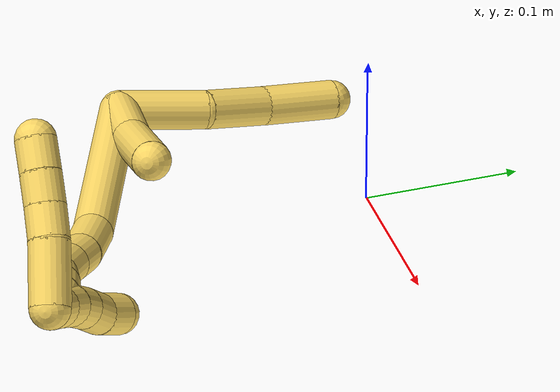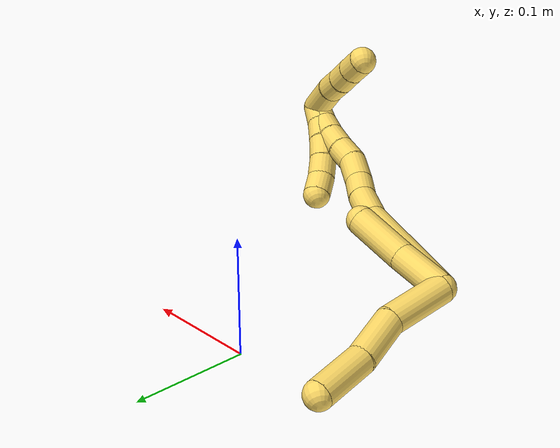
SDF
<sdf version="1.7">
 <world name="default">
  <model name="5">
   <static>0</static>
   <link name="5">
    <collision name="collision-cylinder-e_1_2_8">
     <pose>0.011069 0.02208 -0.013457 -2.11815 0.404474 -0.700104</pose>
     <geometry><cylinder><radius>0.0125</radius><length>0.056255</length></cylinder></geometry>
     <surface>
      <friction><ode><mu>1.16</mu><mu2>1.16</mu2><slip1>0</slip1><slip2>0</slip2></ode></friction>
      <contact><ode><kp>1e+06</kp><kd>1</kd><max_vel>0</max_vel><min_depth>0.001</min_depth></ode></contact>
     </surface>
    </collision>
    <visual name="visual-cylinder-e_1_2_8">
     <pose>0.011069 0.02208 -0.013457 -2.11815 0.404474 -0.700104</pose>
     <geometry><cylinder><radius>0.0125</radius><length>0.056255</length></cylinder></geometry>
     <material><ambient>1 0.858824 0.4 1</ambient></material>
    </visual>
    <collision name="collision-cylinder-e_2_8_9">
     <pose>0.028841 0.057886 -0.043318 -2.44482 0.303682 -0.797476</pose>
     <geometry><cylinder><radius>0.0125</radius><length>0.044828</length></cylinder></geometry>
     <surface>
      <friction><ode><mu>1.16</mu><mu2>1.16</mu2><slip1>0</slip1><slip2>0</slip2></ode></friction>
      <contact><ode><kp>1e+06</kp><kd>1</kd><max_vel>0</max_vel><min_depth>0.001</min_depth></ode></contact>
     </surface>
    </collision>
    <visual name="visual-cylinder-e_2_8_9">
     <pose>0.028841 0.057886 -0.043318 -2.44482 0.303682 -0.797476</pose>
     <geometry><cylinder><radius>0.0125</radius><length>0.044828</length></cylinder></geometry>
     <material><ambient>1 0.858824 0.4 1</ambient></material>
    </visual>
    <collision name="collision-cylinder-e_3_9_6">
     <pose>0.042903 0.089809 -0.074313 -2.24669 0.305615 -0.621047</pose>
     <geometry><cylinder><radius>0.0125</radius><length>0.048917</length></cylinder></geometry>
     <surface>
      <friction><ode><mu>1.16</mu><mu2>1.16</mu2><slip1>0</slip1><slip2>0</slip2></ode></friction>
      <contact><ode><kp>1e+06</kp><kd>1</kd><max_vel>0</max_vel><min_depth>0.001</min_depth></ode></contact>
     </surface>
    </collision>
    <visual name="visual-cylinder-e_3_9_6">
     <pose>0.042903 0.089809 -0.074313 -2.24669 0.305615 -0.621047</pose>
     <geometry><cylinder><radius>0.0125</radius><length>0.048917</length></cylinder></geometry>
     <material><ambient>1 0.858824 0.4 1</ambient></material>
    </visual>
    <collision name="collision-cylinder-e_1_2_10">
     <pose>0.009176 0.005943 0.021311 -0.271944 0.393172 -0.054483</pose>
     <geometry><cylinder><radius>0.0125</radius><length>0.047904</length></cylinder></geometry>
     <surface>
      <friction><ode><mu>1.16</mu><mu2>1.16</mu2><slip1>0</slip1><slip2>0</slip2></ode></friction>
      <contact><ode><kp>1e+06</kp><kd>1</kd><max_vel>0</max_vel><min_depth>0.001</min_depth></ode></contact>
     </surface>
    </collision>
    <visual name="visual-cylinder-e_1_2_10">
     <pose>0.009176 0.005943 0.021311 -0.271944 0.393172 -0.054483</pose>
     <geometry><cylinder><radius>0.0125</radius><length>0.047904</length></cylinder></geometry>
     <material><ambient>1 0.858824 0.4 1</ambient></material>
    </visual>
    <collision name="collision-cylinder-e_2_10_5">
     <pose>0.026022 0.021133 0.065735 -0.380598 0.298837 -0.057981</pose>
     <geometry><cylinder><radius>0.0125</radius><length>0.052096</length></cylinder></geometry>
     <surface>
      <friction><ode><mu>1.16</mu><mu2>1.16</mu2><slip1>0</slip1><slip2>0</slip2></ode></friction>
      <contact><ode><kp>1e+06</kp><kd>1</kd><max_vel>0</max_vel><min_depth>0.001</min_depth></ode></contact>
     </surface>
    </collision>
    <visual name="visual-cylinder-e_2_10_5">
     <pose>0.026022 0.021133 0.065735 -0.380598 0.298837 -0.057981</pose>
     <geometry><cylinder><radius>0.0125</radius><length>0.052096</length></cylinder></geometry>
     <material><ambient>1 0.858824 0.4 1</ambient></material>
    </visual>
    <collision name="collision-cylinder-e_1_2_11">
     <pose>0.029044 -0.005736 0.06193 0.092358 0.43688 0.020516</pose>
     <geometry><cylinder><radius>0.0125</radius><length>0.137285</length></cylinder></geometry>
     <surface>
      <friction><ode><mu>1.16</mu><mu2>1.16</mu2><slip1>0</slip1><slip2>0</slip2></ode></friction>
      <contact><ode><kp>1e+06</kp><kd>1</kd><max_vel>0</max_vel><min_depth>0.001</min_depth></ode></contact>
     </surface>
    </collision>
    <visual name="visual-cylinder-e_1_2_11">
     <pose>0.029044 -0.005736 0.06193 0.092358 0.43688 0.020516</pose>
     <geometry><cylinder><radius>0.0125</radius><length>0.137285</length></cylinder></geometry>
     <material><ambient>1 0.858824 0.4 1</ambient></material>
    </visual>
    <collision name="collision-cylinder-e_2_11_12">
     <pose>0.06174 -0.012631 0.139774 0.072682 0.225074 0.008218</pose>
     <geometry><cylinder><radius>0.0125</radius><length>0.032737</length></cylinder></geometry>
     <surface>
      <friction><ode><mu>1.16</mu><mu2>1.16</mu2><slip1>0</slip1><slip2>0</slip2></ode></friction>
      <contact><ode><kp>1e+06</kp><kd>1</kd><max_vel>0</max_vel><min_depth>0.001</min_depth></ode></contact>
     </surface>
    </collision>
    <visual name="visual-cylinder-e_2_11_12">
     <pose>0.06174 -0.012631 0.139774 0.072682 0.225074 0.008218</pose>
     <geometry><cylinder><radius>0.0125</radius><length>0.032737</length></cylinder></geometry>
     <material><ambient>1 0.858824 0.4 1</ambient></material>
    </visual>
    <collision name="collision-cylinder-e_3_12_13">
     <pose>0.066059 -0.015373 0.166343 0.147545 0.061674 0.00456</pose>
     <geometry><cylinder><radius>0.0125</radius><length>0.021588</length></cylinder></geometry>
     <surface>
      <friction><ode><mu>1.16</mu><mu2>1.16</mu2><slip1>0</slip1><slip2>0</slip2></ode></friction>
      <contact><ode><kp>1e+06</kp><kd>1</kd><max_vel>0</max_vel><min_depth>0.001</min_depth></ode></contact>
     </surface>
    </collision>
    <visual name="visual-cylinder-e_3_12_13">
     <pose>0.066059 -0.015373 0.166343 0.147545 0.061674 0.00456</pose>
     <geometry><cylinder><radius>0.0125</radius><length>0.021588</length></cylinder></geometry>
     <material><ambient>1 0.858824 0.4 1</ambient></material>
    </visual>
    <collision name="collision-cylinder-e_4_13_14">
     <pose>0.067526 -0.017587 0.190795 0.045631 0.058049 0.001325</pose>
     <geometry><cylinder><radius>0.0125</radius><length>0.027667</length></cylinder></geometry>
     <surface>
      <friction><ode><mu>1.16</mu><mu2>1.16</mu2><slip1>0</slip1><slip2>0</slip2></ode></friction>
      <contact><ode><kp>1e+06</kp><kd>1</kd><max_vel>0</max_vel><min_depth>0.001</min_depth></ode></contact>
     </surface>
    </collision>
    <visual name="visual-cylinder-e_4_13_14">
     <pose>0.067526 -0.017587 0.190795 0.045631 0.058049 0.001325</pose>
     <geometry><cylinder><radius>0.0125</radius><length>0.027667</length></cylinder></geometry>
     <material><ambient>1 0.858824 0.4 1</ambient></material>
    </visual>
    <collision name="collision-cylinder-e_5_14_15">
     <pose>0.070704 -0.015749 0.214209 -0.251205 0.234747 -0.029775</pose>
     <geometry><cylinder><radius>0.0125</radius><length>0.02042</length></cylinder></geometry>
     <surface>
      <friction><ode><mu>1.16</mu><mu2>1.16</mu2><slip1>0</slip1><slip2>0</slip2></ode></friction>
      <contact><ode><kp>1e+06</kp><kd>1</kd><max_vel>0</max_vel><min_depth>0.001</min_depth></ode></contact>
     </surface>
    </collision>
    <visual name="visual-cylinder-e_5_14_15">
     <pose>0.070704 -0.015749 0.214209 -0.251205 0.234747 -0.029775</pose>
     <geometry><cylinder><radius>0.0125</radius><length>0.02042</length></cylinder></geometry>
     <material><ambient>1 0.858824 0.4 1</ambient></material>
    </visual>
    <collision name="collision-cylinder-e_6_15_16">
     <pose>0.075223 -0.011627 0.233597 -0.167693 0.21314 -0.017981</pose>
     <geometry><cylinder><radius>0.0125</radius><length>0.020275</length></cylinder></geometry>
     <surface>
      <friction><ode><mu>1.16</mu><mu2>1.16</mu2><slip1>0</slip1><slip2>0</slip2></ode></friction>
      <contact><ode><kp>1e+06</kp><kd>1</kd><max_vel>0</max_vel><min_depth>0.001</min_depth></ode></contact>
     </surface>
    </collision>
    <visual name="visual-cylinder-e_6_15_16">
     <pose>0.075223 -0.011627 0.233597 -0.167693 0.21314 -0.017981</pose>
     <geometry><cylinder><radius>0.0125</radius><length>0.020275</length></cylinder></geometry>
     <material><ambient>1 0.858824 0.4 1</ambient></material>
    </visual>
    <collision name="collision-cylinder-e_7_16_17">
     <pose>0.079116 -0.009454 0.253204 -0.052672 0.175726 -0.004641</pose>
     <geometry><cylinder><radius>0.0125</radius><length>0.020011</length></cylinder></geometry>
     <surface>
      <friction><ode><mu>1.16</mu><mu2>1.16</mu2><slip1>0</slip1><slip2>0</slip2></ode></friction>
      <contact><ode><kp>1e+06</kp><kd>1</kd><max_vel>0</max_vel><min_depth>0.001</min_depth></ode></contact>
     </surface>
    </collision>
    <visual name="visual-cylinder-e_7_16_17">
     <pose>0.079116 -0.009454 0.253204 -0.052672 0.175726 -0.004641</pose>
     <geometry><cylinder><radius>0.0125</radius><length>0.020011</length></cylinder></geometry>
     <material><ambient>1 0.858824 0.4 1</ambient></material>
    </visual>
    <collision name="collision-cylinder-e_8_17_1">
     <pose>0.080689 -0.007489 0.272944 -0.145091 -0.017678 0.001285</pose>
     <geometry><cylinder><radius>0.0125</radius><length>0.020018</length></cylinder></geometry>
     <surface>
      <friction><ode><mu>1.16</mu><mu2>1.16</mu2><slip1>0</slip1><slip2>0</slip2></ode></friction>
      <contact><ode><kp>1e+06</kp><kd>1</kd><max_vel>0</max_vel><min_depth>0.001</min_depth></ode></contact>
     </surface>
    </collision>
    <visual name="visual-cylinder-e_8_17_1">
     <pose>0.080689 -0.007489 0.272944 -0.145091 -0.017678 0.001285</pose>
     <geometry><cylinder><radius>0.0125</radius><length>0.020018</length></cylinder></geometry>
     <material><ambient>1 0.858824 0.4 1</ambient></material>
    </visual>
    <collision name="collision-cylinder-e_1_1_18">
     <pose>0.081633 -0.006604 0.272925 3.08495 0.112326 2.20815</pose>
     <geometry><cylinder><radius>0.0125</radius><length>0.02</length></cylinder></geometry>
     <surface>
      <friction><ode><mu>1.16</mu><mu2>1.16</mu2><slip1>0</slip1><slip2>0</slip2></ode></friction>
      <contact><ode><kp>1e+06</kp><kd>1</kd><max_vel>0</max_vel><min_depth>0.001</min_depth></ode></contact>
     </surface>
    </collision>
    <visual name="visual-cylinder-e_1_1_18">
     <pose>0.081633 -0.006604 0.272925 3.08495 0.112326 2.20815</pose>
     <geometry><cylinder><radius>0.0125</radius><length>0.02</length></cylinder></geometry>
     <material><ambient>1 0.858824 0.4 1</ambient></material>
    </visual>
    <collision name="collision-cylinder-e_2_18_19">
     <pose>0.084395 -0.00675 0.253148 -3.09937 0.164861 -2.64122</pose>
     <geometry><cylinder><radius>0.0125</radius><length>0.02</length></cylinder></geometry>
     <surface>
      <friction><ode><mu>1.16</mu><mu2>1.16</mu2><slip1>0</slip1><slip2>0</slip2></ode></friction>
      <contact><ode><kp>1e+06</kp><kd>1</kd><max_vel>0</max_vel><min_depth>0.001</min_depth></ode></contact>
     </surface>
    </collision>
    <visual name="visual-cylinder-e_2_18_19">
     <pose>0.084395 -0.00675 0.253148 -3.09937 0.164861 -2.64122</pose>
     <geometry><cylinder><radius>0.0125</radius><length>0.02</length></cylinder></geometry>
     <material><ambient>1 0.858824 0.4 1</ambient></material>
    </visual>
    <collision name="collision-cylinder-e_3_19_20">
     <pose>0.088804 -0.006125 0.233686 -3.11982 0.280517 -2.98769</pose>
     <geometry><cylinder><radius>0.0125</radius><length>0.02</length></cylinder></geometry>
     <surface>
      <friction><ode><mu>1.16</mu><mu2>1.16</mu2><slip1>0</slip1><slip2>0</slip2></ode></friction>
      <contact><ode><kp>1e+06</kp><kd>1</kd><max_vel>0</max_vel><min_depth>0.001</min_depth></ode></contact>
     </surface>
    </collision>
    <visual name="visual-cylinder-e_3_19_20">
     <pose>0.088804 -0.006125 0.233686 -3.11982 0.280517 -2.98769</pose>
     <geometry><cylinder><radius>0.0125</radius><length>0.02</length></cylinder></geometry>
     <material><ambient>1 0.858824 0.4 1</ambient></material>
    </visual>
    <collision name="collision-cylinder-e_4_20_21">
     <pose>0.095556 -0.005128 0.21494 -3.05564 0.409621 -2.73333</pose>
     <geometry><cylinder><radius>0.0125</radius><length>0.02</length></cylinder></geometry>
     <surface>
      <friction><ode><mu>1.16</mu><mu2>1.16</mu2><slip1>0</slip1><slip2>0</slip2></ode></friction>
      <contact><ode><kp>1e+06</kp><kd>1</kd><max_vel>0</max_vel><min_depth>0.001</min_depth></ode></contact>
     </surface>
    </collision>
    <visual name="visual-cylinder-e_4_20_21">
     <pose>0.095556 -0.005128 0.21494 -3.05564 0.409621 -2.73333</pose>
     <geometry><cylinder><radius>0.0125</radius><length>0.02</length></cylinder></geometry>
     <material><ambient>1 0.858824 0.4 1</ambient></material>
    </visual>
    <collision name="collision-cylinder-e_5_21_4">
     <pose>0.102418 -0.001487 0.19666 -2.83896 0.292152 -1.53503</pose>
     <geometry><cylinder><radius>0.0125</radius><length>0.02</length></cylinder></geometry>
     <surface>
      <friction><ode><mu>1.16</mu><mu2>1.16</mu2><slip1>0</slip1><slip2>0</slip2></ode></friction>
      <contact><ode><kp>1e+06</kp><kd>1</kd><max_vel>0</max_vel><min_depth>0.001</min_depth></ode></contact>
     </surface>
    </collision>
    <visual name="visual-cylinder-e_5_21_4">
     <pose>0.102418 -0.001487 0.19666 -2.83896 0.292152 -1.53503</pose>
     <geometry><cylinder><radius>0.0125</radius><length>0.02</length></cylinder></geometry>
     <material><ambient>1 0.858824 0.4 1</ambient></material>
    </visual>
    <collision name="collision-cylinder-e_1_1_22">
     <pose>0.062938 -0.000277 0.27596 -2.4446 -1.09838 2.07008</pose>
     <geometry><cylinder><radius>0.0125</radius><length>0.03947</length></cylinder></geometry>
     <surface>
      <friction><ode><mu>1.16</mu><mu2>1.16</mu2><slip1>0</slip1><slip2>0</slip2></ode></friction>
      <contact><ode><kp>1e+06</kp><kd>1</kd><max_vel>0</max_vel><min_depth>0.001</min_depth></ode></contact>
     </surface>
    </collision>
    <visual name="visual-cylinder-e_1_1_22">
     <pose>0.062938 -0.000277 0.27596 -2.4446 -1.09838 2.07008</pose>
     <geometry><cylinder><radius>0.0125</radius><length>0.03947</length></cylinder></geometry>
     <material><ambient>1 0.858824 0.4 1</ambient></material>
    </visual>
    <collision name="collision-cylinder-e_2_22_23">
     <pose>0.036116 0.007308 0.265028 -2.71884 -1.12346 2.48441</pose>
     <geometry><cylinder><radius>0.0125</radius><length>0.020516</length></cylinder></geometry>
     <surface>
      <friction><ode><mu>1.16</mu><mu2>1.16</mu2><slip1>0</slip1><slip2>0</slip2></ode></friction>
      <contact><ode><kp>1e+06</kp><kd>1</kd><max_vel>0</max_vel><min_depth>0.001</min_depth></ode></contact>
     </surface>
    </collision>
    <visual name="visual-cylinder-e_2_22_23">
     <pose>0.036116 0.007308 0.265028 -2.71884 -1.12346 2.48441</pose>
     <geometry><cylinder><radius>0.0125</radius><length>0.020516</length></cylinder></geometry>
     <material><ambient>1 0.858824 0.4 1</ambient></material>
    </visual>
    <collision name="collision-cylinder-e_3_23_24">
     <pose>0.017613 0.010879 0.257614 -2.66217 -1.18166 2.44274</pose>
     <geometry><cylinder><radius>0.0125</radius><length>0.020004</length></cylinder></geometry>
     <surface>
      <friction><ode><mu>1.16</mu><mu2>1.16</mu2><slip1>0</slip1><slip2>0</slip2></ode></friction>
      <contact><ode><kp>1e+06</kp><kd>1</kd><max_vel>0</max_vel><min_depth>0.001</min_depth></ode></contact>
     </surface>
    </collision>
    <visual name="visual-cylinder-e_3_23_24">
     <pose>0.017613 0.010879 0.257614 -2.66217 -1.18166 2.44274</pose>
     <geometry><cylinder><radius>0.0125</radius><length>0.020004</length></cylinder></geometry>
     <material><ambient>1 0.858824 0.4 1</ambient></material>
    </visual>
    <collision name="collision-cylinder-e_4_24_3">
     <pose>-0.000883 0.014201 0.250752 -2.71892 -1.17762 2.51992</pose>
     <geometry><cylinder><radius>0.0125</radius><length>0.02001</length></cylinder></geometry>
     <surface>
      <friction><ode><mu>1.16</mu><mu2>1.16</mu2><slip1>0</slip1><slip2>0</slip2></ode></friction>
      <contact><ode><kp>1e+06</kp><kd>1</kd><max_vel>0</max_vel><min_depth>0.001</min_depth></ode></contact>
     </surface>
    </collision>
    <visual name="visual-cylinder-e_4_24_3">
     <pose>-0.000883 0.014201 0.250752 -2.71892 -1.17762 2.51992</pose>
     <geometry><cylinder><radius>0.0125</radius><length>0.02001</length></cylinder></geometry>
     <material><ambient>1 0.858824 0.4 1</ambient></material>
    </visual>
    <collision name="collision-sphere-3">
     <pose>-0.010124 0.015774 0.247256 0 -0 0</pose>
     <geometry><sphere><radius>0.0125</radius></sphere></geometry>
     <surface>
      <friction><ode><mu>1.16</mu><mu2>1.16</mu2><slip1>0</slip1><slip2>0</slip2></ode></friction>
      <contact><ode><kp>1e+06</kp><kd>1</kd><max_vel>0</max_vel><min_depth>0.001</min_depth></ode></contact>
     </surface>
    </collision>
    <visual name="visual-sphere-3">
     <pose>-0.010124 0.015774 0.247256 0 -0 0</pose>
     <geometry><sphere><radius>0.0125</radius></sphere></geometry>
     <material><ambient>1 0.858824 0.4 1</ambient></material>
    </visual>
    <collision name="collision-sphere-24">
     <pose>0.008359 0.012629 0.254247 0 -0 0</pose>
     <geometry><sphere><radius>0.0125</radius></sphere></geometry>
     <surface>
      <friction><ode><mu>1.16</mu><mu2>1.16</mu2><slip1>0</slip1><slip2>0</slip2></ode></friction>
      <contact><ode><kp>1e+06</kp><kd>1</kd><max_vel>0</max_vel><min_depth>0.001</min_depth></ode></contact>
     </surface>
    </collision>
    <visual name="visual-sphere-24">
     <pose>0.008359 0.012629 0.254247 0 -0 0</pose>
     <geometry><sphere><radius>0.0125</radius></sphere></geometry>
     <material><ambient>1 0.858824 0.4 1</ambient></material>
    </visual>
    <collision name="collision-sphere-23">
     <pose>0.026868 0.009128 0.260981 0 -0 0</pose>
     <geometry><sphere><radius>0.0125</radius></sphere></geometry>
     <surface>
      <friction><ode><mu>1.16</mu><mu2>1.16</mu2><slip1>0</slip1><slip2>0</slip2></ode></friction>
      <contact><ode><kp>1e+06</kp><kd>1</kd><max_vel>0</max_vel><min_depth>0.001</min_depth></ode></contact>
     </surface>
    </collision>
    <visual name="visual-sphere-23">
     <pose>0.026868 0.009128 0.260981 0 -0 0</pose>
     <geometry><sphere><radius>0.0125</radius></sphere></geometry>
     <material><ambient>1 0.858824 0.4 1</ambient></material>
    </visual>
    <collision name="collision-sphere-22">
     <pose>0.045365 0.005487 0.269074 0 -0 0</pose>
     <geometry><sphere><radius>0.0125</radius></sphere></geometry>
     <surface>
      <friction><ode><mu>1.16</mu><mu2>1.16</mu2><slip1>0</slip1><slip2>0</slip2></ode></friction>
      <contact><ode><kp>1e+06</kp><kd>1</kd><max_vel>0</max_vel><min_depth>0.001</min_depth></ode></contact>
     </surface>
    </collision>
    <visual name="visual-sphere-22">
     <pose>0.045365 0.005487 0.269074 0 -0 0</pose>
     <geometry><sphere><radius>0.0125</radius></sphere></geometry>
     <material><ambient>1 0.858824 0.4 1</ambient></material>
    </visual>
    <collision name="collision-sphere-4">
     <pose>0.105298 0.001367 0.187519 0 -0 0</pose>
     <geometry><sphere><radius>0.0125</radius></sphere></geometry>
     <surface>
      <friction><ode><mu>1.16</mu><mu2>1.16</mu2><slip1>0</slip1><slip2>0</slip2></ode></friction>
      <contact><ode><kp>1e+06</kp><kd>1</kd><max_vel>0</max_vel><min_depth>0.001</min_depth></ode></contact>
     </surface>
    </collision>
    <visual name="visual-sphere-4">
     <pose>0.105298 0.001367 0.187519 0 -0 0</pose>
     <geometry><sphere><radius>0.0125</radius></sphere></geometry>
     <material><ambient>1 0.858824 0.4 1</ambient></material>
    </visual>
    <collision name="collision-sphere-21">
     <pose>0.099538 -0.004341 0.205801 0 -0 0</pose>
     <geometry><sphere><radius>0.0125</radius></sphere></geometry>
     <surface>
      <friction><ode><mu>1.16</mu><mu2>1.16</mu2><slip1>0</slip1><slip2>0</slip2></ode></friction>
      <contact><ode><kp>1e+06</kp><kd>1</kd><max_vel>0</max_vel><min_depth>0.001</min_depth></ode></contact>
     </surface>
    </collision>
    <visual name="visual-sphere-21">
     <pose>0.099538 -0.004341 0.205801 0 -0 0</pose>
     <geometry><sphere><radius>0.0125</radius></sphere></geometry>
     <material><ambient>1 0.858824 0.4 1</ambient></material>
    </visual>
    <collision name="collision-sphere-20">
     <pose>0.091573 -0.005916 0.224079 0 -0 0</pose>
     <geometry><sphere><radius>0.0125</radius></sphere></geometry>
     <surface>
      <friction><ode><mu>1.16</mu><mu2>1.16</mu2><slip1>0</slip1><slip2>0</slip2></ode></friction>
      <contact><ode><kp>1e+06</kp><kd>1</kd><max_vel>0</max_vel><min_depth>0.001</min_depth></ode></contact>
     </surface>
    </collision>
    <visual name="visual-sphere-20">
     <pose>0.091573 -0.005916 0.224079 0 -0 0</pose>
     <geometry><sphere><radius>0.0125</radius></sphere></geometry>
     <material><ambient>1 0.858824 0.4 1</ambient></material>
    </visual>
    <collision name="collision-sphere-5">
     <pose>0.033691 0.03038 0.088847 0 -0 0</pose>
     <geometry><sphere><radius>0.0125</radius></sphere></geometry>
     <surface>
      <friction><ode><mu>1.16</mu><mu2>1.16</mu2><slip1>0</slip1><slip2>0</slip2></ode></friction>
      <contact><ode><kp>1e+06</kp><kd>1</kd><max_vel>0</max_vel><min_depth>0.001</min_depth></ode></contact>
     </surface>
    </collision>
    <visual name="visual-sphere-5">
     <pose>0.033691 0.03038 0.088847 0 -0 0</pose>
     <geometry><sphere><radius>0.0125</radius></sphere></geometry>
     <material><ambient>1 0.858824 0.4 1</ambient></material>
    </visual>
    <collision name="collision-sphere-10">
     <pose>0.018353 0.011885 0.042623 0 -0 0</pose>
     <geometry><sphere><radius>0.0125</radius></sphere></geometry>
     <surface>
      <friction><ode><mu>1.16</mu><mu2>1.16</mu2><slip1>0</slip1><slip2>0</slip2></ode></friction>
      <contact><ode><kp>1e+06</kp><kd>1</kd><max_vel>0</max_vel><min_depth>0.001</min_depth></ode></contact>
     </surface>
    </collision>
    <visual name="visual-sphere-10">
     <pose>0.018353 0.011885 0.042623 0 -0 0</pose>
     <geometry><sphere><radius>0.0125</radius></sphere></geometry>
     <material><ambient>1 0.858824 0.4 1</ambient></material>
    </visual>
    <collision name="collision-sphere-6">
     <pose>0.050262 0.108006 -0.088905 0 -0 0</pose>
     <geometry><sphere><radius>0.0125</radius></sphere></geometry>
     <surface>
      <friction><ode><mu>1.16</mu><mu2>1.16</mu2><slip1>0</slip1><slip2>0</slip2></ode></friction>
      <contact><ode><kp>1e+06</kp><kd>1</kd><max_vel>0</max_vel><min_depth>0.001</min_depth></ode></contact>
     </surface>
    </collision>
    <visual name="visual-sphere-6">
     <pose>0.050262 0.108006 -0.088905 0 -0 0</pose>
     <geometry><sphere><radius>0.0125</radius></sphere></geometry>
     <material><ambient>1 0.858824 0.4 1</ambient></material>
    </visual>
    <collision name="collision-sphere-9">
     <pose>0.035543 0.071612 -0.059721 0 -0 0</pose>
     <geometry><sphere><radius>0.0125</radius></sphere></geometry>
     <surface>
      <friction><ode><mu>1.16</mu><mu2>1.16</mu2><slip1>0</slip1><slip2>0</slip2></ode></friction>
      <contact><ode><kp>1e+06</kp><kd>1</kd><max_vel>0</max_vel><min_depth>0.001</min_depth></ode></contact>
     </surface>
    </collision>
    <visual name="visual-sphere-9">
     <pose>0.035543 0.071612 -0.059721 0 -0 0</pose>
     <geometry><sphere><radius>0.0125</radius></sphere></geometry>
     <material><ambient>1 0.858824 0.4 1</ambient></material>
    </visual>
    <collision name="collision-sphere-2">
     <geometry><sphere><radius>0.0125</radius></sphere></geometry>
     <surface>
      <friction><ode><mu>1.16</mu><mu2>1.16</mu2><slip1>0</slip1><slip2>0</slip2></ode></friction>
      <contact><ode><kp>1e+06</kp><kd>1</kd><max_vel>0</max_vel><min_depth>0.001</min_depth></ode></contact>
     </surface>
    </collision>
    <visual name="visual-sphere-2">
     <geometry><sphere><radius>0.0125</radius></sphere></geometry>
     <material><ambient>1 0.858824 0.4 1</ambient></material>
    </visual>
    <collision name="collision-sphere-19">
     <pose>0.086036 -0.006334 0.243293 0 -0 0</pose>
     <geometry><sphere><radius>0.0125</radius></sphere></geometry>
     <surface>
      <friction><ode><mu>1.16</mu><mu2>1.16</mu2><slip1>0</slip1><slip2>0</slip2></ode></friction>
      <contact><ode><kp>1e+06</kp><kd>1</kd><max_vel>0</max_vel><min_depth>0.001</min_depth></ode></contact>
     </surface>
    </collision>
    <visual name="visual-sphere-19">
     <pose>0.086036 -0.006334 0.243293 0 -0 0</pose>
     <geometry><sphere><radius>0.0125</radius></sphere></geometry>
     <material><ambient>1 0.858824 0.4 1</ambient></material>
    </visual>
    <collision name="collision-sphere-8">
     <pose>0.022138 0.04416 -0.026914 0 -0 0</pose>
     <geometry><sphere><radius>0.0125</radius></sphere></geometry>
     <surface>
      <friction><ode><mu>1.16</mu><mu2>1.16</mu2><slip1>0</slip1><slip2>0</slip2></ode></friction>
      <contact><ode><kp>1e+06</kp><kd>1</kd><max_vel>0</max_vel><min_depth>0.001</min_depth></ode></contact>
     </surface>
    </collision>
    <visual name="visual-sphere-8">
     <pose>0.022138 0.04416 -0.026914 0 -0 0</pose>
     <geometry><sphere><radius>0.0125</radius></sphere></geometry>
     <material><ambient>1 0.858824 0.4 1</ambient></material>
    </visual>
    <collision name="collision-sphere-11">
     <pose>0.058087 -0.011472 0.12386 0 -0 0</pose>
     <geometry><sphere><radius>0.0125</radius></sphere></geometry>
     <surface>
      <friction><ode><mu>1.16</mu><mu2>1.16</mu2><slip1>0</slip1><slip2>0</slip2></ode></friction>
      <contact><ode><kp>1e+06</kp><kd>1</kd><max_vel>0</max_vel><min_depth>0.001</min_depth></ode></contact>
     </surface>
    </collision>
    <visual name="visual-sphere-11">
     <pose>0.058087 -0.011472 0.12386 0 -0 0</pose>
     <geometry><sphere><radius>0.0125</radius></sphere></geometry>
     <material><ambient>1 0.858824 0.4 1</ambient></material>
    </visual>
    <collision name="collision-sphere-12">
     <pose>0.065393 -0.013789 0.155687 0 -0 0</pose>
     <geometry><sphere><radius>0.0125</radius></sphere></geometry>
     <surface>
      <friction><ode><mu>1.16</mu><mu2>1.16</mu2><slip1>0</slip1><slip2>0</slip2></ode></friction>
      <contact><ode><kp>1e+06</kp><kd>1</kd><max_vel>0</max_vel><min_depth>0.001</min_depth></ode></contact>
     </surface>
    </collision>
    <visual name="visual-sphere-12">
     <pose>0.065393 -0.013789 0.155687 0 -0 0</pose>
     <geometry><sphere><radius>0.0125</radius></sphere></geometry>
     <material><ambient>1 0.858824 0.4 1</ambient></material>
    </visual>
    <collision name="collision-sphere-13">
     <pose>0.066724 -0.016957 0.177 0 -0 0</pose>
     <geometry><sphere><radius>0.0125</radius></sphere></geometry>
     <surface>
      <friction><ode><mu>1.16</mu><mu2>1.16</mu2><slip1>0</slip1><slip2>0</slip2></ode></friction>
      <contact><ode><kp>1e+06</kp><kd>1</kd><max_vel>0</max_vel><min_depth>0.001</min_depth></ode></contact>
     </surface>
    </collision>
    <visual name="visual-sphere-13">
     <pose>0.066724 -0.016957 0.177 0 -0 0</pose>
     <geometry><sphere><radius>0.0125</radius></sphere></geometry>
     <material><ambient>1 0.858824 0.4 1</ambient></material>
    </visual>
    <collision name="collision-sphere-14">
     <pose>0.068329 -0.018217 0.204591 0 -0 0</pose>
     <geometry><sphere><radius>0.0125</radius></sphere></geometry>
     <surface>
      <friction><ode><mu>1.16</mu><mu2>1.16</mu2><slip1>0</slip1><slip2>0</slip2></ode></friction>
      <contact><ode><kp>1e+06</kp><kd>1</kd><max_vel>0</max_vel><min_depth>0.001</min_depth></ode></contact>
     </surface>
    </collision>
    <visual name="visual-sphere-14">
     <pose>0.068329 -0.018217 0.204591 0 -0 0</pose>
     <geometry><sphere><radius>0.0125</radius></sphere></geometry>
     <material><ambient>1 0.858824 0.4 1</ambient></material>
    </visual>
    <collision name="collision-sphere-15">
     <pose>0.073079 -0.01328 0.223828 0 -0 0</pose>
     <geometry><sphere><radius>0.0125</radius></sphere></geometry>
     <surface>
      <friction><ode><mu>1.16</mu><mu2>1.16</mu2><slip1>0</slip1><slip2>0</slip2></ode></friction>
      <contact><ode><kp>1e+06</kp><kd>1</kd><max_vel>0</max_vel><min_depth>0.001</min_depth></ode></contact>
     </surface>
    </collision>
    <visual name="visual-sphere-15">
     <pose>0.073079 -0.01328 0.223828 0 -0 0</pose>
     <geometry><sphere><radius>0.0125</radius></sphere></geometry>
     <material><ambient>1 0.858824 0.4 1</ambient></material>
    </visual>
    <collision name="collision-sphere-16">
     <pose>0.077367 -0.009973 0.243366 0 -0 0</pose>
     <geometry><sphere><radius>0.0125</radius></sphere></geometry>
     <surface>
      <friction><ode><mu>1.16</mu><mu2>1.16</mu2><slip1>0</slip1><slip2>0</slip2></ode></friction>
      <contact><ode><kp>1e+06</kp><kd>1</kd><max_vel>0</max_vel><min_depth>0.001</min_depth></ode></contact>
     </surface>
    </collision>
    <visual name="visual-sphere-16">
     <pose>0.077367 -0.009973 0.243366 0 -0 0</pose>
     <geometry><sphere><radius>0.0125</radius></sphere></geometry>
     <material><ambient>1 0.858824 0.4 1</ambient></material>
    </visual>
    <collision name="collision-sphere-17">
     <pose>0.080866 -0.008936 0.263041 0 -0 0</pose>
     <geometry><sphere><radius>0.0125</radius></sphere></geometry>
     <surface>
      <friction><ode><mu>1.16</mu><mu2>1.16</mu2><slip1>0</slip1><slip2>0</slip2></ode></friction>
      <contact><ode><kp>1e+06</kp><kd>1</kd><max_vel>0</max_vel><min_depth>0.001</min_depth></ode></contact>
     </surface>
    </collision>
    <visual name="visual-sphere-17">
     <pose>0.080866 -0.008936 0.263041 0 -0 0</pose>
     <geometry><sphere><radius>0.0125</radius></sphere></geometry>
     <material><ambient>1 0.858824 0.4 1</ambient></material>
    </visual>
    <collision name="collision-sphere-1">
     <pose>0.080512 -0.006042 0.282846 0 -0 0</pose>
     <geometry><sphere><radius>0.0125</radius></sphere></geometry>
     <surface>
      <friction><ode><mu>1.16</mu><mu2>1.16</mu2><slip1>0</slip1><slip2>0</slip2></ode></friction>
      <contact><ode><kp>1e+06</kp><kd>1</kd><max_vel>0</max_vel><min_depth>0.001</min_depth></ode></contact>
     </surface>
    </collision>
    <visual name="visual-sphere-1">
     <pose>0.080512 -0.006042 0.282846 0 -0 0</pose>
     <geometry><sphere><radius>0.0125</radius></sphere></geometry>
     <material><ambient>1 0.858824 0.4 1</ambient></material>
    </visual>
    <collision name="collision-sphere-18">
     <pose>0.082754 -0.007167 0.263004 0 -0 0</pose>
     <geometry><sphere><radius>0.0125</radius></sphere></geometry>
     <surface>
      <friction><ode><mu>1.16</mu><mu2>1.16</mu2><slip1>0</slip1><slip2>0</slip2></ode></friction>
      <contact><ode><kp>1e+06</kp><kd>1</kd><max_vel>0</max_vel><min_depth>0.001</min_depth></ode></contact>
     </surface>
    </collision>
    <visual name="visual-sphere-18">
     <pose>0.082754 -0.007167 0.263004 0 -0 0</pose>
     <geometry><sphere><radius>0.0125</radius></sphere></geometry>
     <material><ambient>1 0.858824 0.4 1</ambient></material>
    </visual>
    <inertial>
     <pose>0.045194 0.009092 0.119503 0 -0 0</pose>
     <mass>0.75</mass>
     <inertia>
      <ixx>0.000247</ixx>
      <ixy>0</ixy>
      <ixz>0</ixz>
      <iyy>0.000257</iyy>
      <iyz>0</iyz>
      <izz>-0.000117</izz>
     </inertia>
    </inertial>
   </link>
   <pose>-0.084138 -0.13681 0.040909 0.820868 0.914397 0.408293</pose>
  </model>
 </world>
</sdf>
